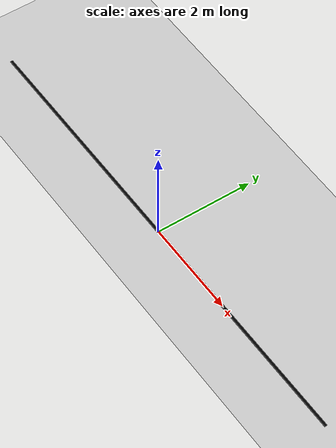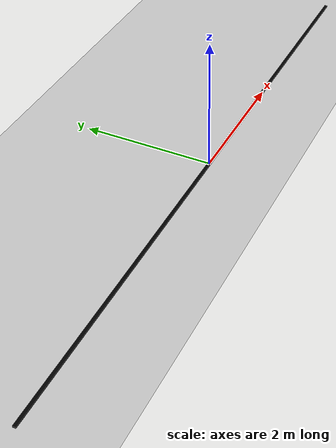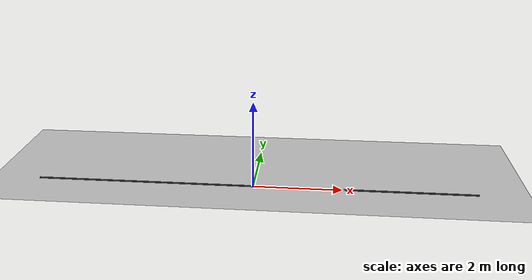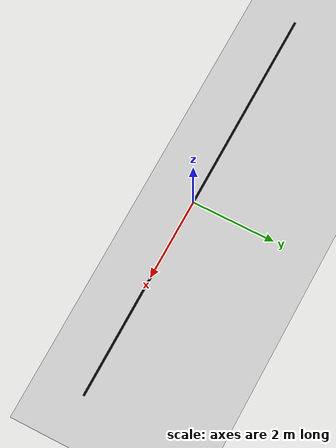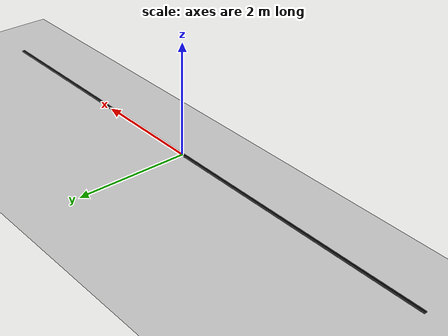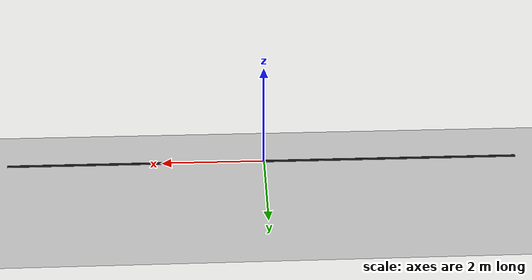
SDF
<?xml version="1.0" ?>
<sdf version="1.6">
  <world name="default">
    <include>
      <uri>model://ground_plane</uri>
    </include>

    <include>
      <uri>model://sun</uri>
    </include>

    <model name="line_cam">
      <static>true</static>
      <pose>0 0 0.5 0 -1.2 0</pose>

      <link name="link">
        <sensor name="camera" type="camera">
          <always_on>true</always_on>
          <update_rate>30</update_rate>

          <camera>
            <horizontal_fov>1.047</horizontal_fov>
            <image>
              <width>640</width>
              <height>480</height>
              <format>R8G8B8</format>
            </image>
            <clip>
              <near>0.05</near>
              <far>20.0</far>
            </clip>
          </camera>

          <plugin name="gazebo_ros_camera" filename="libgazebo_ros_camera.so">
            <robotNamespace>/line_cam</robotNamespace>
            <cameraName>camera</cameraName>
            <frameName>line_cam_frame</frameName>
            <imageTopicName>image_raw</imageTopicName>
            <cameraInfoTopicName>camera_info</cameraInfoTopicName>
          </plugin>
        </sensor>
      </link>
    </model>
    <model name="track_line">
    <static>true</static>
    <!-- A thin black strip on the ground -->
    <pose>0 0 0.01 0 0 0</pose>
    <link name="link">
      <collision name="collision">
        <geometry>
          <box><size>10 0.05 0.02</size></box>
        </geometry>
      </collision>
      <visual name="visual">
        <geometry>
          <box><size>10 0.05 0.02</size></box>
        </geometry>
        <material>
          <ambient>0 0 0 1</ambient>
          <diffuse>0 0 0 1</diffuse>
        </material>
      </visual>
    </link>
  </model>

</world>
</sdf>
